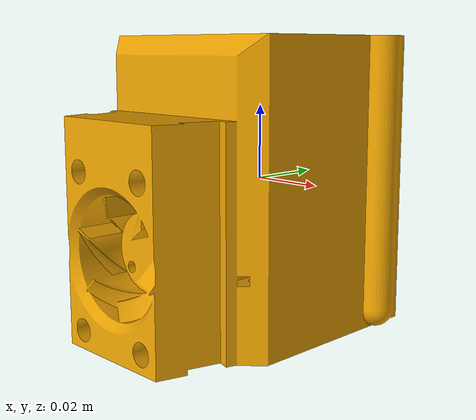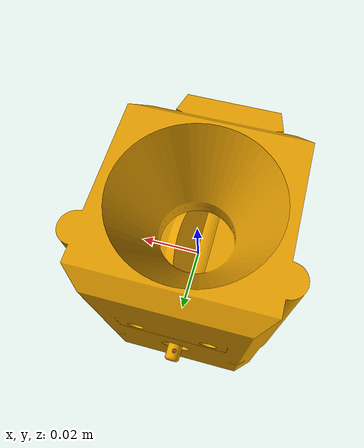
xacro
<?xml version="1.0"?>
<robot name="dispenser_hopper" xmlns:xacro="http://ros.org/wiki/xacro">

    <xacro:include filename= "$(find kortex_scripts)/objects/urdf/macros.xacro"/>

    <xacro:property name="lenght" value="0.081"/>
    <xacro:property name="width" value="0.062"/>
    <xacro:property name="height" value="0.1"/>
    <xacro:property name="mass" value="0.160"/>

    <xacro:macro name="dispenser_hopper" params ="" >
      <link name='hopper_base_link'>
 	    <inertial>
            <origin xyz="0 0 0" rpy="0 0 0"/>
            <mass value="${mass}" />
            <xacro:box_inertia mass="${mass}" x="${lenght}" y="${width}" z="${height}" />
        </inertial>
            <collision>
                <origin xyz="0 0 0" rpy="0 0 0"/>
                <geometry>
                    <box size="${lenght} ${width} ${height}"/>
                </geometry>
            </collision>
        <visual>
            <origin xyz="0 0 0" rpy="0 0 0" />
            <geometry>
                <mesh filename="package://kortex_scripts/objects/meshes/bio_dispenser_hopper.dae" />
            </geometry>
        </visual>
        </link>

        <gazebo reference="hopper_base_link">
            <kp>100000.0</kp>
            <kd>100.0</kd>
            <mu1>100</mu1>
            <mu2>100</mu2>
        </gazebo>
    </xacro:macro>

    <xacro:dispenser_hopper/>

</robot>
<!--xacro qr_tomato_grasp_block.xacro > tmp.urdf && check_urdf tmp.urdf && rm tmp.urdf-->

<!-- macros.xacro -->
<robot xmlns:xacro="http://www.ros.org/wiki/xacro">

    <xacro:macro  name="cylinder_inertia" params="mass r l">
      <inertia  ixx="${mass*(3*r*r+l*l)/12}" ixy = "0" ixz = "0"
                iyy="${mass*(3*r*r+l*l)/12}" iyz = "0"
                izz="${mass*(r*r)/2}" />
    </xacro:macro >

    <xacro:macro name="box_inertia" params="mass x y z">
      <inertia  ixx="${mass*(y*y+z*z)/12}" ixy = "0" ixz = "0"
                iyy="${mass*(x*x+z*z)/12}" iyz = "0"
                izz="${mass*(x*x+z*z)/12}"
      />
    </xacro:macro>

  <xacro:macro name="sphere_inertia" params="mass r">
    <inertia
          ixx="${2*mass*r*r/5}" ixy = "0" ixz = "0"
          iyy="${2*mass*r*r/5}" iyz = "0"
          izz="${2*mass*r*r/5}"
    />
  </xacro:macro>

</robot>
